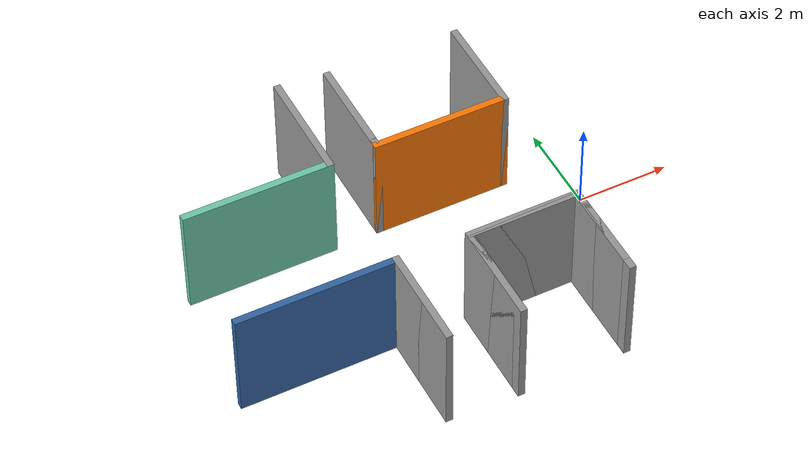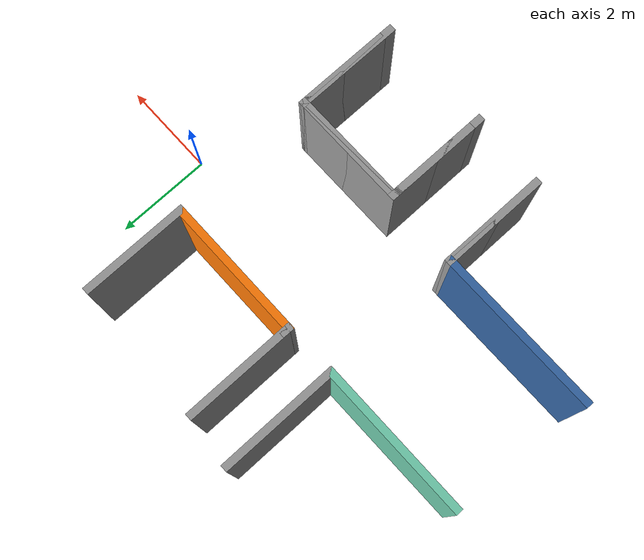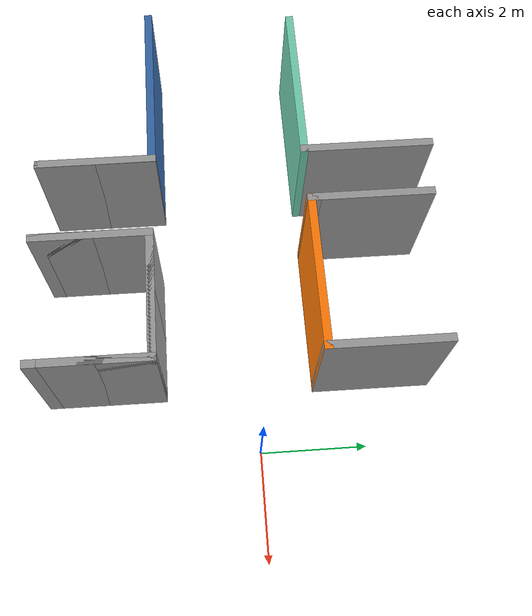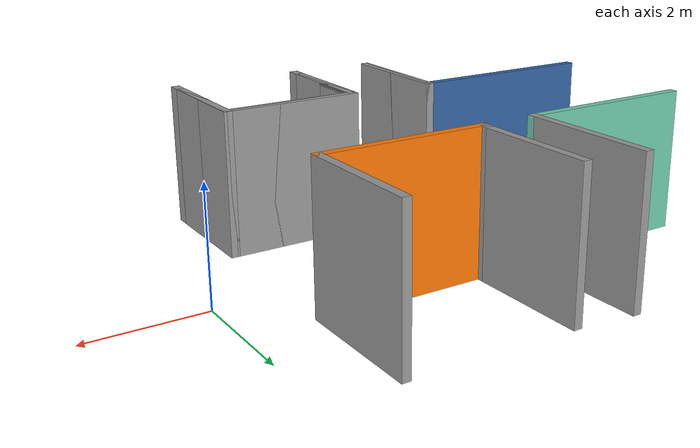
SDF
<?xml version='1.0'?>
<sdf version='1.6'>
  <model name='room'>
    <pose frame=''>-4.79399 -0.205593 0 0 -0 0</pose>
    <link name='Wall_13'>
      <collision name='Wall_13_Collision'>
        <geometry>
          <box>
            <size>2.5 0.15 2.5</size>
          </box>
        </geometry>
        <pose frame=''>0 0 1.25 0 -0 0</pose>
      </collision>
      <visual name='Wall_13_Visual'>
        <pose frame=''>0 0 1.25 0 -0 0</pose>
        <geometry>
          <box>
            <size>2.5 0.15 2.5</size>
          </box>
        </geometry>
        <material>
          <script>
            <uri>file://media/materials/scripts/gazebo.material</uri>
            <name>Gazebo/Grey</name>
          </script>
          <ambient>1 1 1 1</ambient>
        </material>
        <meta>
          <layer>0</layer>
        </meta>
      </visual>
      <pose frame=''>-0.308094 2.516 0 0 -0 -1.5708</pose>
    </link>
    <link name='Wall_14'>
      <collision name='Wall_14_Collision'>
        <geometry>
          <box>
            <size>3.25 0.15 2.5</size>
          </box>
        </geometry>
        <pose frame=''>0 0 1.25 0 -0 0</pose>
      </collision>
      <visual name='Wall_14_Visual'>
        <pose frame=''>0 0 1.25 0 -0 0</pose>
        <geometry>
          <box>
            <size>3.25 0.15 2.5</size>
          </box>
        </geometry>
        <material>
          <script>
            <uri>file://media/materials/scripts/gazebo.material</uri>
            <name>Gazebo/Grey</name>
          </script>
          <ambient>0.435294 0.796078 0.67451 1</ambient>
        </material>
        <meta>
          <layer>0</layer>
        </meta>
      </visual>
      <pose frame=''>-1.85809 1.341 0 0 -0 3.14159</pose>
    </link>
    <link name='Wall_16'>
      <collision name='Wall_16_Collision'>
        <geometry>
          <box>
            <size>2 0.15 2.5</size>
          </box>
        </geometry>
        <pose frame=''>0 0 1.25 0 -0 0</pose>
      </collision>
      <visual name='Wall_16_Visual'>
        <pose frame=''>0 0 1.25 0 -0 0</pose>
        <geometry>
          <box>
            <size>2 0.15 2.5</size>
          </box>
        </geometry>
        <material>
          <script>
            <uri>file://media/materials/scripts/gazebo.material</uri>
            <name>Gazebo/Grey</name>
          </script>
          <ambient>1 1 1 1</ambient>
        </material>
        <meta>
          <layer>0</layer>
        </meta>
      </visual>
      <pose frame=''>1.26601 -2.516 0 0 -0 -1.5708</pose>
    </link>
    <link name='Wall_17'>
      <collision name='Wall_17_Collision'>
        <geometry>
          <box>
            <size>2 0.15 2.5</size>
          </box>
        </geometry>
        <pose frame=''>0 0 1.25 0 -0 0</pose>
      </collision>
      <visual name='Wall_17_Visual'>
        <pose frame=''>0 0 1.25 0 -0 0</pose>
        <geometry>
          <box>
            <size>2 0.15 2.5</size>
          </box>
        </geometry>
        <material>
          <script>
            <uri>file://media/materials/scripts/gazebo.material</uri>
            <name>Gazebo/Grey</name>
          </script>
          <ambient>1 1 1 1</ambient>
        </material>
        <meta>
          <layer>0</layer>
        </meta>
      </visual>
      <pose frame=''>1.26601 -2.516 0 0 -0 1.5708</pose>
    </link>
    <link name='Wall_18'>
      <collision name='Wall_18_Collision'>
        <geometry>
          <box>
            <size>0.15 0.15 2.5</size>
          </box>
        </geometry>
        <pose frame=''>0 0 1.25 0 -0 0</pose>
      </collision>
      <visual name='Wall_18_Visual'>
        <pose frame=''>0 0 1.25 0 -0 0</pose>
        <geometry>
          <box>
            <size>0.15 0.15 2.5</size>
          </box>
        </geometry>
        <material>
          <script>
            <uri>file://media/materials/scripts/gazebo.material</uri>
            <name>Gazebo/Grey</name>
          </script>
          <ambient>1 1 1 1</ambient>
        </material>
        <meta>
          <layer>0</layer>
        </meta>
      </visual>
      <pose frame=''>1.26601 -1.591 0 0 -0 0</pose>
    </link>
    <link name='Wall_19'>
      <collision name='Wall_19_Collision'>
        <geometry>
          <box>
            <size>2.5 0.15 2.5</size>
          </box>
        </geometry>
        <pose frame=''>0 0 1.25 0 -0 0</pose>
      </collision>
      <visual name='Wall_19_Visual'>
        <pose frame=''>0 0 1.25 0 -0 0</pose>
        <geometry>
          <box>
            <size>2.5 0.15 2.5</size>
          </box>
        </geometry>
        <material>
          <script>
            <uri>file://media/materials/scripts/gazebo.material</uri>
            <name>Gazebo/Grey</name>
          </script>
          <ambient>1 1 1 1</ambient>
        </material>
        <meta>
          <layer>0</layer>
        </meta>
      </visual>
      <pose frame=''>2.44101 -1.591 0 0 -0 0</pose>
    </link>
    <link name='Wall_20'>
      <collision name='Wall_20_Collision'>
        <geometry>
          <box>
            <size>2 0.15 2.5</size>
          </box>
        </geometry>
        <pose frame=''>0 0 1.25 0 -0 0</pose>
      </collision>
      <visual name='Wall_20_Visual'>
        <pose frame=''>0 0 1.25 0 -0 0</pose>
        <geometry>
          <box>
            <size>2 0.15 2.5</size>
          </box>
        </geometry>
        <material>
          <script>
            <uri>file://media/materials/scripts/gazebo.material</uri>
            <name>Gazebo/Grey</name>
          </script>
          <ambient>1 1 1 1</ambient>
        </material>
        <meta>
          <layer>0</layer>
        </meta>
      </visual>
      <pose frame=''>3.61601 -2.516 0 0 -0 -1.5708</pose>
    </link>
    <link name='Wall_21'>
      <collision name='Wall_21_Collision'>
        <geometry>
          <box>
            <size>2 0.15 2.5</size>
          </box>
        </geometry>
        <pose frame=''>0 0 1.25 0 -0 0</pose>
      </collision>
      <visual name='Wall_21_Visual'>
        <pose frame=''>0 0 1.25 0 -0 0</pose>
        <geometry>
          <box>
            <size>2 0.15 2.5</size>
          </box>
        </geometry>
        <material>
          <script>
            <uri>file://media/materials/scripts/gazebo.material</uri>
            <name>Gazebo/Grey</name>
          </script>
          <ambient>1 1 1 1</ambient>
        </material>
        <meta>
          <layer>0</layer>
        </meta>
      </visual>
      <pose frame=''>3.61601 -2.516 0 0 -0 1.5708</pose>
    </link>
    <link name='Wall_22'>
      <collision name='Wall_22_Collision'>
        <geometry>
          <box>
            <size>2.5 0.15 2.5</size>
          </box>
        </geometry>
        <pose frame=''>0 0 1.25 0 -0 0</pose>
      </collision>
      <visual name='Wall_22_Visual'>
        <pose frame=''>0 0 1.25 0 -0 0</pose>
        <geometry>
          <box>
            <size>2.5 0.15 2.5</size>
          </box>
        </geometry>
        <material>
          <script>
            <uri>file://media/materials/scripts/gazebo.material</uri>
            <name>Gazebo/Grey</name>
          </script>
          <ambient>1 1 1 1</ambient>
        </material>
        <meta>
          <layer>0</layer>
        </meta>
      </visual>
      <pose frame=''>2.44101 -1.591 0 0 -0 3.14159</pose>
    </link>
    <link name='Wall_23'>
      <collision name='Wall_23_Collision'>
        <geometry>
          <box>
            <size>2.25 0.15 2.5</size>
          </box>
        </geometry>
        <pose frame=''>0 0 1.25 0 -0 0</pose>
      </collision>
      <visual name='Wall_23_Visual'>
        <pose frame=''>0 0 1.25 0 -0 0</pose>
        <geometry>
          <box>
            <size>2.25 0.15 2.5</size>
          </box>
        </geometry>
        <material>
          <script>
            <uri>file://media/materials/scripts/gazebo.material</uri>
            <name>Gazebo/Grey</name>
          </script>
          <ambient>1 1 1 1</ambient>
        </material>
        <meta>
          <layer>0</layer>
        </meta>
      </visual>
      <pose frame=''>1.26601 -2.641 0 0 -0 -1.5708</pose>
    </link>
    <link name='Wall_24'>
      <collision name='Wall_24_Collision'>
        <geometry>
          <box>
            <size>2.25 0.15 2.5</size>
          </box>
        </geometry>
        <pose frame=''>0 0 1.25 0 -0 0</pose>
      </collision>
      <visual name='Wall_24_Visual'>
        <pose frame=''>0 0 1.25 0 -0 0</pose>
        <geometry>
          <box>
            <size>2.25 0.15 2.5</size>
          </box>
        </geometry>
        <material>
          <script>
            <uri>file://media/materials/scripts/gazebo.material</uri>
            <name>Gazebo/Grey</name>
          </script>
          <ambient>1 1 1 1</ambient>
        </material>
        <meta>
          <layer>0</layer>
        </meta>
      </visual>
      <pose frame=''>1.26601 -2.641 0 0 -0 1.5708</pose>
    </link>
    <link name='Wall_25'>
      <collision name='Wall_25_Collision'>
        <geometry>
          <box>
            <size>2.5 0.15 2.5</size>
          </box>
        </geometry>
        <pose frame=''>0 0 1.25 0 -0 0</pose>
      </collision>
      <visual name='Wall_25_Visual'>
        <pose frame=''>0 0 1.25 0 -0 0</pose>
        <geometry>
          <box>
            <size>2.5 0.15 2.5</size>
          </box>
        </geometry>
        <material>
          <script>
            <uri>file://media/materials/scripts/gazebo.material</uri>
            <name>Gazebo/Grey</name>
          </script>
          <ambient>0.203922 0.396078 0.643137 1</ambient>
        </material>
        <meta>
          <layer>0</layer>
        </meta>
      </visual>
      <pose frame=''>2.44101 -1.591 0 0 -0 0</pose>
    </link>
    <link name='Wall_26'>
      <collision name='Wall_26_Collision'>
        <geometry>
          <box>
            <size>2.25 0.15 2.5</size>
          </box>
        </geometry>
        <pose frame=''>0 0 1.25 0 -0 0</pose>
      </collision>
      <visual name='Wall_26_Visual'>
        <pose frame=''>0 0 1.25 0 -0 0</pose>
        <geometry>
          <box>
            <size>2.25 0.15 2.5</size>
          </box>
        </geometry>
        <material>
          <script>
            <uri>file://media/materials/scripts/gazebo.material</uri>
            <name>Gazebo/Grey</name>
          </script>
          <ambient>1 1 1 1</ambient>
        </material>
        <meta>
          <layer>0</layer>
        </meta>
      </visual>
      <pose frame=''>3.61601 -2.641 0 0 -0 -1.5708</pose>
    </link>
    <link name='Wall_28'>
      <collision name='Wall_28_Collision'>
        <geometry>
          <box>
            <size>2.25 0.15 2.5</size>
          </box>
        </geometry>
        <pose frame=''>0 0 1.25 0 -0 0</pose>
      </collision>
      <visual name='Wall_28_Visual'>
        <pose frame=''>0 0 1.25 0 -0 0</pose>
        <geometry>
          <box>
            <size>2.25 0.15 2.5</size>
          </box>
        </geometry>
        <material>
          <script>
            <uri>file://media/materials/scripts/gazebo.material</uri>
            <name>Gazebo/Grey</name>
          </script>
          <ambient>1 1 1 1</ambient>
        </material>
        <meta>
          <layer>0</layer>
        </meta>
      </visual>
      <pose frame=''>0.74131 2.51857 0 0 -0 -1.5708</pose>
    </link>
    <link name='Wall_30'>
      <collision name='Wall_30_Collision'>
        <geometry>
          <box>
            <size>0.25 0.15 2.5</size>
          </box>
        </geometry>
        <pose frame=''>0 0 1.25 0 -0 0</pose>
      </collision>
      <visual name='Wall_30_Visual'>
        <pose frame=''>0 0 1.25 0 -0 0</pose>
        <geometry>
          <box>
            <size>0.25 0.15 2.5</size>
          </box>
        </geometry>
        <material>
          <script>
            <uri>file://media/materials/scripts/gazebo.material</uri>
            <name>Gazebo/Grey</name>
          </script>
          <ambient>1 1 1 1</ambient>
        </material>
        <meta>
          <layer>0</layer>
        </meta>
      </visual>
      <pose frame=''>0.74131 1.41857 0 0 -0 -1.5708</pose>
    </link>
    <link name='Wall_31'>
      <collision name='Wall_31_Collision'>
        <geometry>
          <box>
            <size>3 0.15 2.5</size>
          </box>
        </geometry>
        <pose frame=''>0 0 1.25 0 -0 0</pose>
      </collision>
      <visual name='Wall_31_Visual'>
        <pose frame=''>0 0 1.25 0 -0 0</pose>
        <geometry>
          <box>
            <size>3 0.15 2.5</size>
          </box>
        </geometry>
        <material>
          <script>
            <uri>file://media/materials/scripts/gazebo.material</uri>
            <name>Gazebo/Grey</name>
          </script>
          <ambient>0.996078 0.47451 0.0196078 1</ambient>
        </material>
        <meta>
          <layer>0</layer>
        </meta>
      </visual>
      <pose frame=''>2.16631 1.36857 0 0 -0 0</pose>
    </link>
    <link name='Wall_32'>
      <collision name='Wall_32_Collision'>
        <geometry>
          <box>
            <size>2.25 0.15 2.5</size>
          </box>
        </geometry>
        <pose frame=''>0 0 1.25 0 -0 0</pose>
      </collision>
      <visual name='Wall_32_Visual'>
        <pose frame=''>0 0 1.25 0 -0 0</pose>
        <geometry>
          <box>
            <size>2.25 0.15 2.5</size>
          </box>
        </geometry>
        <material>
          <script>
            <uri>file://media/materials/scripts/gazebo.material</uri>
            <name>Gazebo/Grey</name>
          </script>
          <ambient>1 1 1 1</ambient>
        </material>
        <meta>
          <layer>0</layer>
        </meta>
      </visual>
      <pose frame=''>3.59131 2.41857 0 0 -0 1.5708</pose>
    </link>
    <link name='Wall_4'>
      <collision name='Wall_4_Collision'>
        <geometry>
          <box>
            <size>2.25 0.15 2.5</size>
          </box>
        </geometry>
        <pose frame=''>0 0 1.25 0 -0 0</pose>
      </collision>
      <visual name='Wall_4_Visual'>
        <pose frame=''>0 0 1.25 0 -0 0</pose>
        <geometry>
          <box>
            <size>2.25 0.15 2.5</size>
          </box>
        </geometry>
        <material>
          <script>
            <uri>file://media/materials/scripts/gazebo.material</uri>
            <name>Gazebo/Grey</name>
          </script>
          <ambient>1 1 1 1</ambient>
        </material>
        <meta>
          <layer>0</layer>
        </meta>
      </visual>
      <pose frame=''>-0.266011 -2.56441 0 0 -0 -1.5708</pose>
    </link>
    <link name='Wall_5'>
      <collision name='Wall_5_Collision'>
        <geometry>
          <box>
            <size>2.25 0.15 2.5</size>
          </box>
        </geometry>
        <pose frame=''>0 0 1.25 0 -0 0</pose>
      </collision>
      <visual name='Wall_5_Visual'>
        <pose frame=''>0 0 1.25 0 -0 0</pose>
        <geometry>
          <box>
            <size>2.25 0.15 2.5</size>
          </box>
        </geometry>
        <material>
          <script>
            <uri>file://media/materials/scripts/gazebo.material</uri>
            <name>Gazebo/Grey</name>
          </script>
          <ambient>1 1 1 1</ambient>
        </material>
        <meta>
          <layer>0</layer>
        </meta>
      </visual>
      <pose frame=''>-0.266011 -2.56441 0 0 -0 1.5708</pose>
    </link>
    <link name='Wall_6'>
      <collision name='Wall_6_Collision'>
        <geometry>
          <box>
            <size>3.5 0.15 2.5</size>
          </box>
        </geometry>
        <pose frame=''>0 0 1.25 0 -0 0</pose>
      </collision>
      <visual name='Wall_6_Visual'>
        <pose frame=''>0 0 1.25 0 -0 0</pose>
        <geometry>
          <box>
            <size>3.5 0.15 2.5</size>
          </box>
        </geometry>
        <material>
          <script>
            <uri>file://media/materials/scripts/gazebo.material</uri>
            <name>Gazebo/Grey</name>
          </script>
          <ambient>0.203922 0.396078 0.643137 1</ambient>
        </material>
        <meta>
          <layer>0</layer>
        </meta>
      </visual>
      <pose frame=''>-1.94101 -1.51441 0 0 -0 3.14159</pose>
    </link>
    <static>1</static>
  </model>
</sdf>
